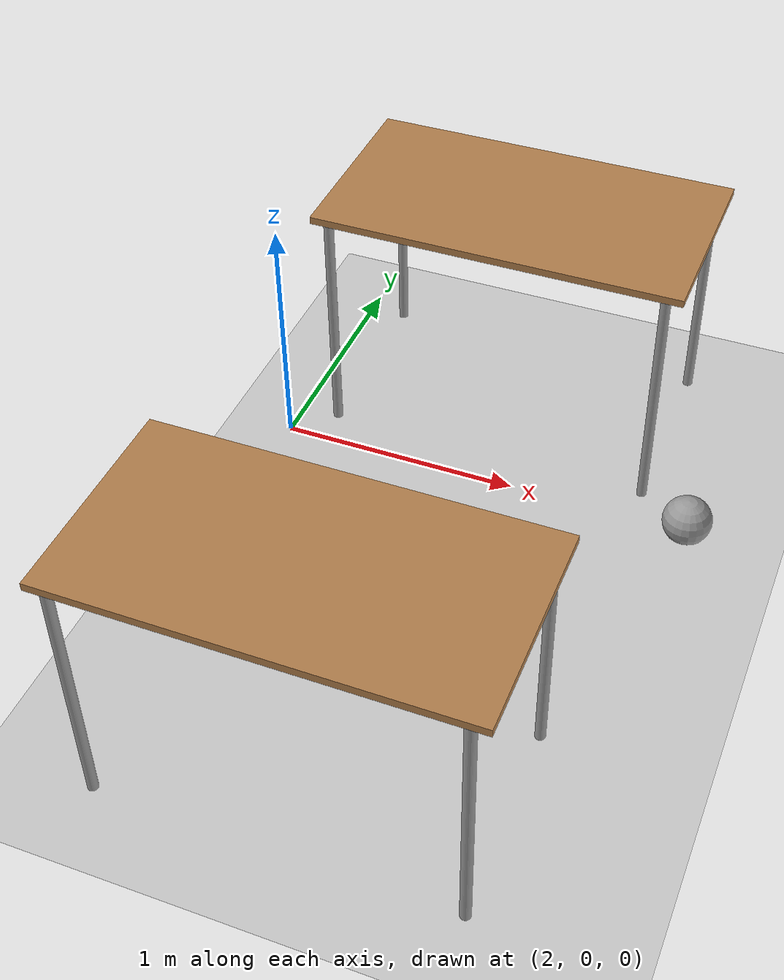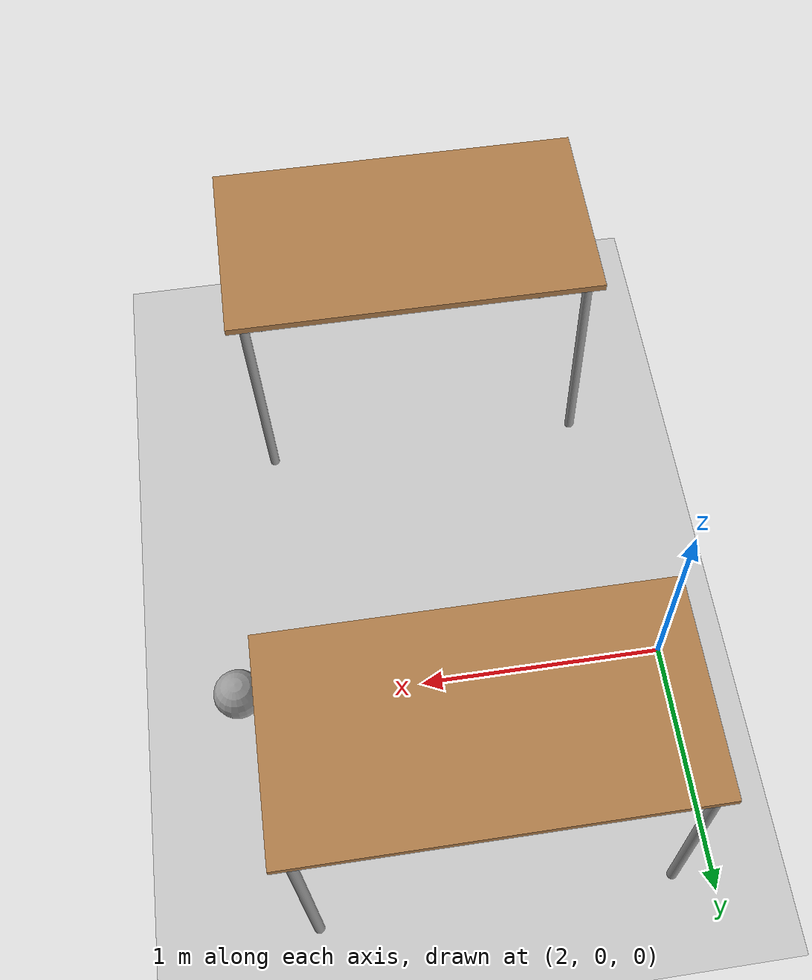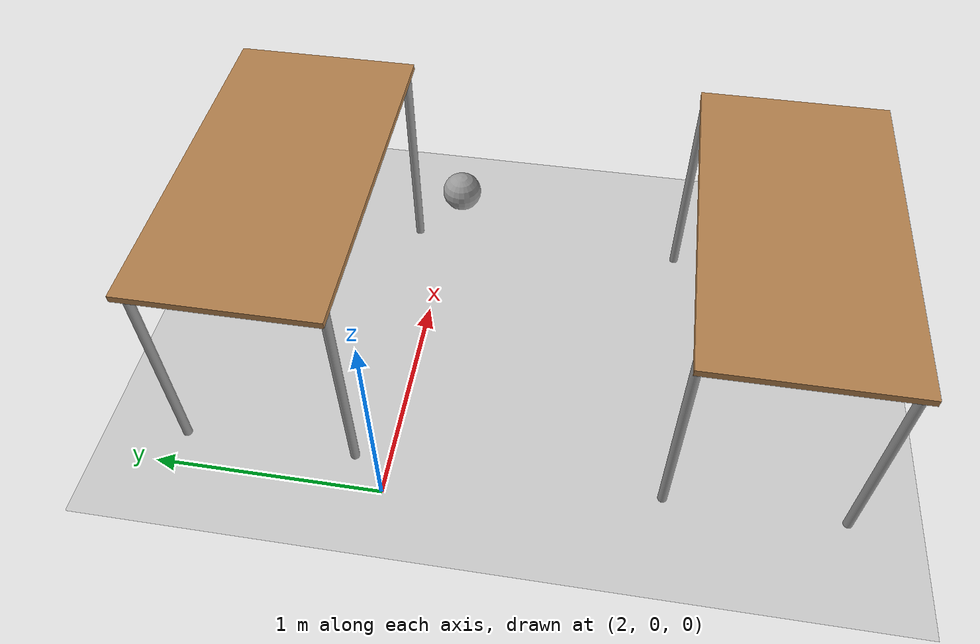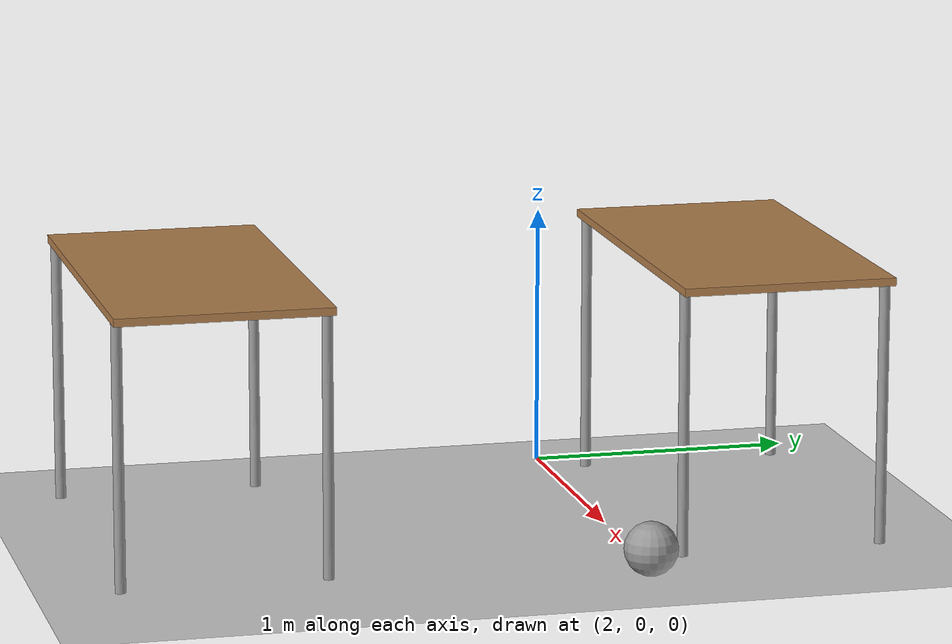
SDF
<sdf version="1.6">
 <world name="default">
  <model name="ground_plane">
   <static>1</static>
   <link name="link">
    <collision name="collision">
     <geometry><plane><normal>0 0 1</normal><size>100 100</size></plane></geometry>
     <surface><friction><ode><mu>100</mu><mu2>50</mu2></ode></friction></surface>
    </collision>
    <visual name="visual">
     <cast_shadows>0</cast_shadows>
     <geometry><plane><normal>0 0 1</normal><size>100 100</size></plane></geometry>
     <material>
      <script><uri>file://media/materials/scripts/gazebo.material</uri><name>Gazebo/Grey</name></script>
     </material>
    </visual>
   </link>
  </model>
  <model name="whiteBall">
   <link name="link_0">
    <inertial>
     <mass>1</mass>
     <inertia><ixx>0.1</ixx><ixy>0</ixy><ixz>0</ixz><iyy>0.1</iyy><iyz>0</iyz><izz>0.1</izz></inertia>
    </inertial>
    <visual name="ModelPreview_5::link_0::visual_1">
     <geometry><sphere><radius>0.1</radius></sphere></geometry>
     <material>
      <lighting>1</lighting>
      <script><uri>file://media/materials/scripts/gazebo.material</uri><name>Gazebo/Grey</name></script>
      <ambient>0.3 0.3 0.3 1</ambient>
      <diffuse>0.7 0.7 0.7 1</diffuse>
      <specular>0.01 0.01 0.01 1</specular>
      <emissive>0 0 0 1</emissive>
      <shader type="vertex"><normal_map>__default__</normal_map></shader>
     </material>
    </visual>
    <visual name="visual">
     <geometry><sphere><radius>0.1</radius></sphere></geometry>
     <material>
      <lighting>1</lighting>
      <script><uri>file://media/materials/scripts/gazebo.material</uri><name>Gazebo/White</name></script>
      <ambient>0.9 0.9 0.9 1</ambient>
      <diffuse>0.7 0.7 0.7 1</diffuse>
      <specular>0.01 0.01 0.01 1</specular>
      <emissive>0.3 0.3 0.3 1</emissive>
      <shader type="vertex"><normal_map>__default__</normal_map></shader>
     </material>
    </visual>
    <collision name="collision">
     <geometry><sphere><radius>0.1</radius></sphere></geometry>
     <surface>
      <friction>
       <ode><mu>1</mu><mu2>1</mu2><fdir1>0 0 0</fdir1><slip1>0</slip1><slip2>0</slip2></ode>
       <torsional>
        <coefficient>1</coefficient>
        <patch_radius>0</patch_radius>
        <surface_radius>0</surface_radius>
        <use_patch_radius>1</use_patch_radius>
        <ode><slip>0</slip></ode>
       </torsional>
      </friction>
      <bounce><restitution_coefficient>0</restitution_coefficient><threshold>1e+06</threshold></bounce>
      <contact>
       <collide_without_contact>0</collide_without_contact>
       <collide_without_contact_bitmask>1</collide_without_contact_bitmask>
       <collide_bitmask>1</collide_bitmask>
       <ode>
        <soft_cfm>0</soft_cfm>
        <soft_erp>0.2</soft_erp>
        <kp>1e+13</kp>
        <kd>1</kd>
        <max_vel>0.01</max_vel>
        <min_depth>0</min_depth>
       </ode>
       <bullet>
        <split_impulse>1</split_impulse>
        <split_impulse_penetration_threshold>-0.01</split_impulse_penetration_threshold>
        <soft_cfm>0</soft_cfm>
        <soft_erp>0.2</soft_erp>
        <kp>1e+13</kp>
        <kd>1</kd>
       </bullet>
      </contact>
     </surface>
    </collision>
   </link>
   <static>0</static>
   <pose>3.74288 -0.028295 0.09999 0 -0 0</pose>
   <plugin name="collision_map_creator" filename="libcollision_map_creator.so"/>
  </model>
  <model name="table_3">
   <static>1</static>
   <link name="link">
    <collision name="surface">
     <pose>0 0 1 0 -0 0</pose>
     <geometry><box><size>1.5 0.8 0.03</size></box></geometry>
     <surface><friction><ode><mu>0.6</mu><mu2>0.6</mu2></ode></friction></surface>
    </collision>
    <visual name="visual1">
     <pose>0 0 1 0 -0 0</pose>
     <geometry><box><size>1.5 0.8 0.03</size></box></geometry>
     <material>
      <script><uri>file://media/materials/scripts/gazebo.material</uri><name>Gazebo/Wood</name></script>
     </material>
    </visual>
    <collision name="front_left_leg">
     <pose>0.68 0.38 0.5 0 -0 0</pose>
     <geometry><cylinder><radius>0.02</radius><length>1</length></cylinder></geometry>
    </collision>
    <visual name="front_left_leg">
     <pose>0.68 0.38 0.5 0 -0 0</pose>
     <geometry><cylinder><radius>0.02</radius><length>1</length></cylinder></geometry>
     <material>
      <script><uri>file://media/materials/scripts/gazebo.material</uri><name>Gazebo/Grey</name></script>
     </material>
    </visual>
    <collision name="front_right_leg">
     <pose>0.68 -0.38 0.5 0 -0 0</pose>
     <geometry><cylinder><radius>0.02</radius><length>1</length></cylinder></geometry>
    </collision>
    <visual name="front_right_leg">
     <pose>0.68 -0.38 0.5 0 -0 0</pose>
     <geometry><cylinder><radius>0.02</radius><length>1</length></cylinder></geometry>
     <material>
      <script><uri>file://media/materials/scripts/gazebo.material</uri><name>Gazebo/Grey</name></script>
     </material>
    </visual>
    <collision name="back_right_leg">
     <pose>-0.68 -0.38 0.5 0 -0 0</pose>
     <geometry><cylinder><radius>0.02</radius><length>1</length></cylinder></geometry>
    </collision>
    <visual name="back_right_leg">
     <pose>-0.68 -0.38 0.5 0 -0 0</pose>
     <geometry><cylinder><radius>0.02</radius><length>1</length></cylinder></geometry>
     <material>
      <script><uri>file://media/materials/scripts/gazebo.material</uri><name>Gazebo/Grey</name></script>
     </material>
    </visual>
    <collision name="back_left_leg">
     <pose>-0.68 0.38 0.5 0 -0 0</pose>
     <geometry><cylinder><radius>0.02</radius><length>1</length></cylinder></geometry>
    </collision>
    <visual name="back_left_leg">
     <pose>-0.68 0.38 0.5 0 -0 0</pose>
     <geometry><cylinder><radius>0.02</radius><length>1</length></cylinder></geometry>
     <material>
      <script><uri>file://media/materials/scripts/gazebo.material</uri><name>Gazebo/Grey</name></script>
     </material>
    </visual>
   </link>
   <pose>2.83401 0.536033 0 0 -0 0</pose>
  </model>
  <model name="table_4">
   <static>1</static>
   <link name="link">
    <collision name="surface">
     <pose>0 0 1 0 -0 0</pose>
     <geometry><box><size>1.5 0.8 0.03</size></box></geometry>
     <surface><friction><ode><mu>0.6</mu><mu2>0.6</mu2></ode></friction></surface>
    </collision>
    <visual name="visual1">
     <pose>0 0 1 0 -0 0</pose>
     <geometry><box><size>1.5 0.8 0.03</size></box></geometry>
     <material>
      <script><uri>file://media/materials/scripts/gazebo.material</uri><name>Gazebo/Wood</name></script>
     </material>
    </visual>
    <collision name="front_left_leg">
     <pose>0.68 0.38 0.5 0 -0 0</pose>
     <geometry><cylinder><radius>0.02</radius><length>1</length></cylinder></geometry>
    </collision>
    <visual name="front_left_leg">
     <pose>0.68 0.38 0.5 0 -0 0</pose>
     <geometry><cylinder><radius>0.02</radius><length>1</length></cylinder></geometry>
     <material>
      <script><uri>file://media/materials/scripts/gazebo.material</uri><name>Gazebo/Grey</name></script>
     </material>
    </visual>
    <collision name="front_right_leg">
     <pose>0.68 -0.38 0.5 0 -0 0</pose>
     <geometry><cylinder><radius>0.02</radius><length>1</length></cylinder></geometry>
    </collision>
    <visual name="front_right_leg">
     <pose>0.68 -0.38 0.5 0 -0 0</pose>
     <geometry><cylinder><radius>0.02</radius><length>1</length></cylinder></geometry>
     <material>
      <script><uri>file://media/materials/scripts/gazebo.material</uri><name>Gazebo/Grey</name></script>
     </material>
    </visual>
    <collision name="back_right_leg">
     <pose>-0.68 -0.38 0.5 0 -0 0</pose>
     <geometry><cylinder><radius>0.02</radius><length>1</length></cylinder></geometry>
    </collision>
    <visual name="back_right_leg">
     <pose>-0.68 -0.38 0.5 0 -0 0</pose>
     <geometry><cylinder><radius>0.02</radius><length>1</length></cylinder></geometry>
     <material>
      <script><uri>file://media/materials/scripts/gazebo.material</uri><name>Gazebo/Grey</name></script>
     </material>
    </visual>
    <collision name="back_left_leg">
     <pose>-0.68 0.38 0.5 0 -0 0</pose>
     <geometry><cylinder><radius>0.02</radius><length>1</length></cylinder></geometry>
    </collision>
    <visual name="back_left_leg">
     <pose>-0.68 0.38 0.5 0 -0 0</pose>
     <geometry><cylinder><radius>0.02</radius><length>1</length></cylinder></geometry>
     <material>
      <script><uri>file://media/materials/scripts/gazebo.material</uri><name>Gazebo/Grey</name></script>
     </material>
    </visual>
   </link>
   <pose>2.8337 -1.54773 0 0 -0 0</pose>
  </model>
 </world>
</sdf>
